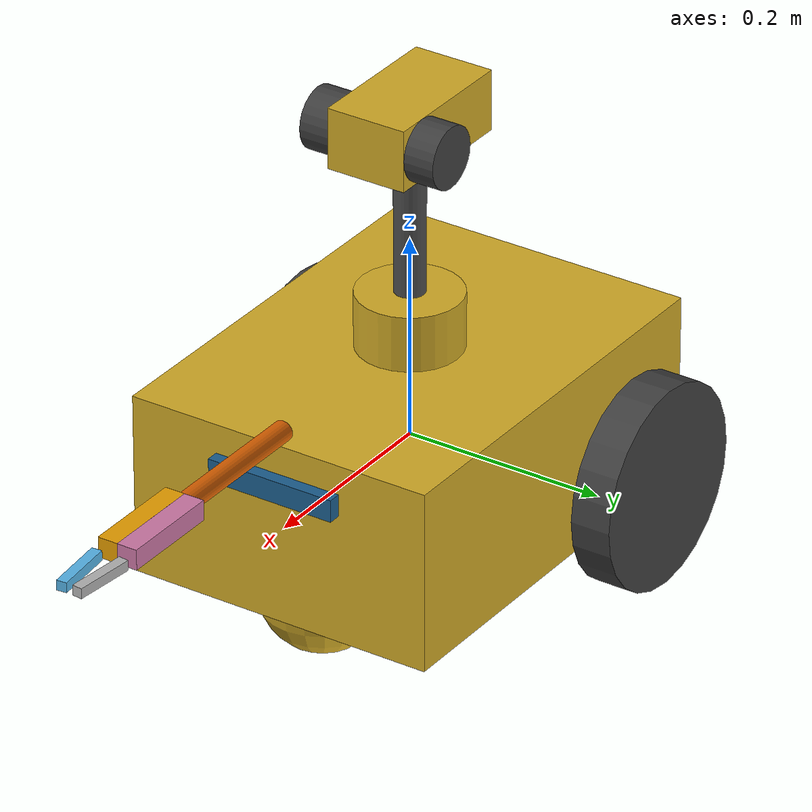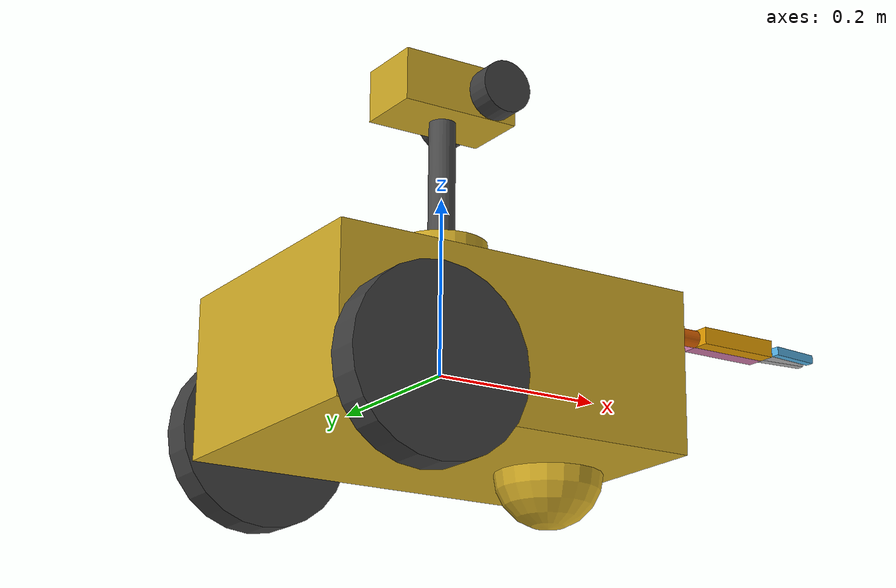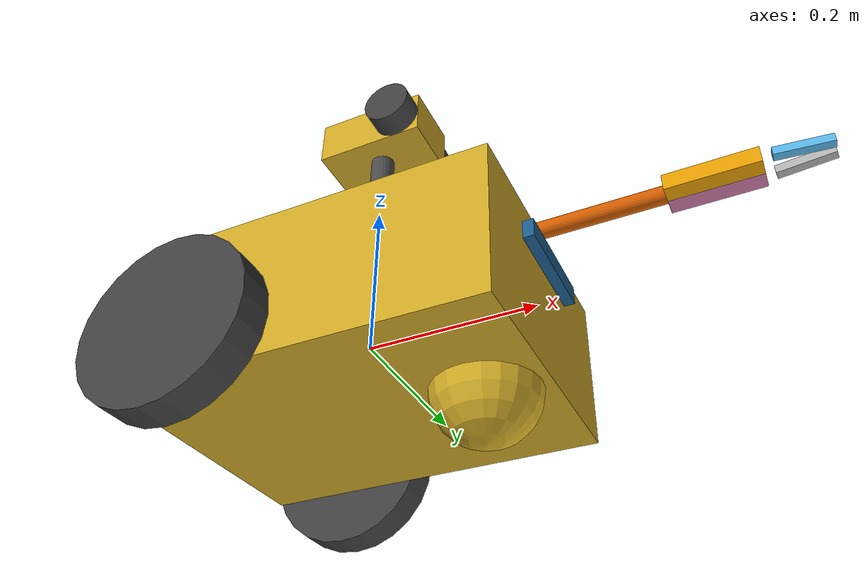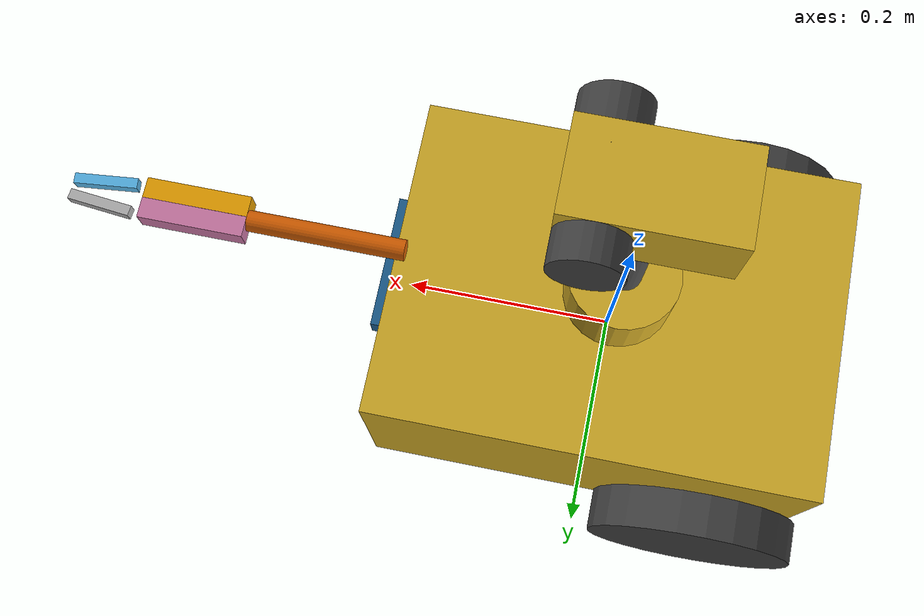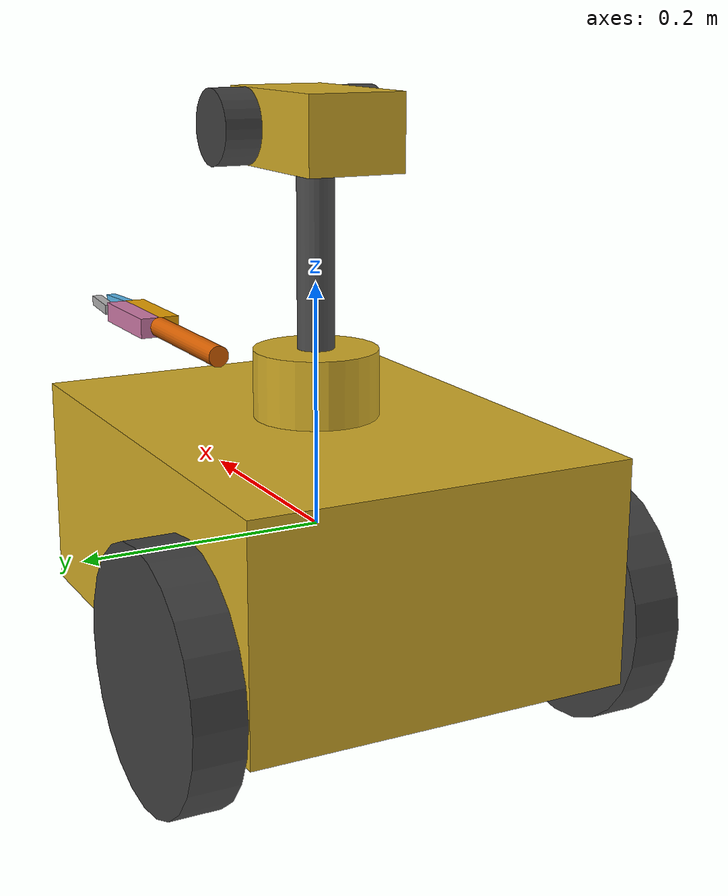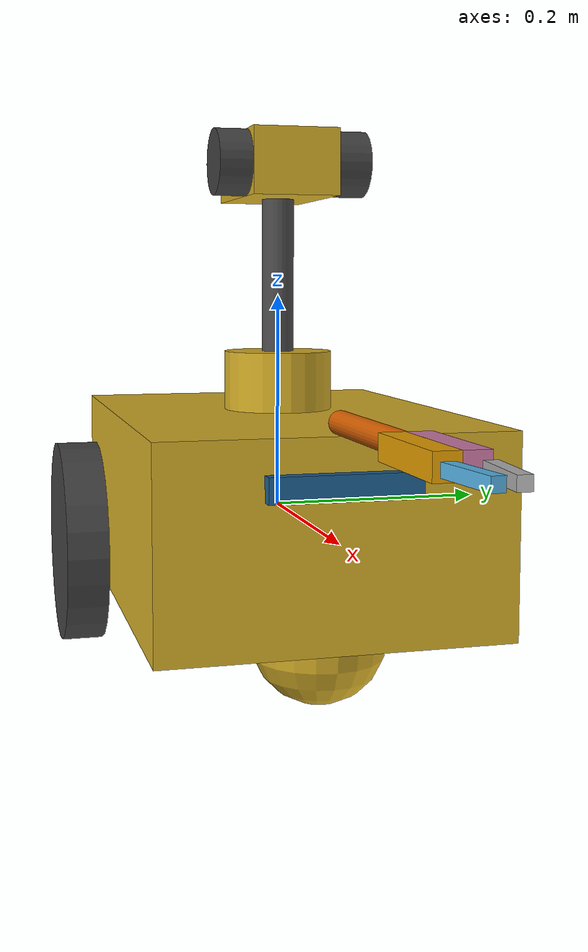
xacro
<?xml version="1.0"?>
<robot name="prm_robot"
  xmlns:xacro="http://ros.org/wiki/xacro">

  <!-- Definicao de Algumas Contantes -->

  <xacro:property name="base_width" value="0.31"/>
  <xacro:property name="base_length" value="0.42"/>
  <xacro:property name="base_height" value="0.18"/>

  <xacro:property name="wheel_radius" value="0.10"/> <!-- Raio da roda -->
  <xacro:property name="wheel_width" value="0.04"/> <!-- Largura da roda -->
  <xacro:property name="wheel_ygap" value="0.025"/> <!-- Distancia entre as rodas -->
  <xacro:property name="wheel_zoff" value="0.05"/> <!-- Deslocamento da roda em Z -->
  <xacro:property name="wheel_xoff" value="0.12"/> <!-- Deslocamento da roda em X -->

  <xacro:property name="caster_xoff" value="0.14"/> <!-- Deslocamento do caster em X -->

  <!-- Definição de algumas propriedades inerciais -->
  <xacro:macro name="box_inertia" params="m w h d">
    <inertial>
      <origin xyz="0 0 0" rpy="${pi/2} 0 ${pi/2}"/>
      <mass value="${m}"/>
      <inertia ixx="${(m/12) * (h*h + d*d)}" ixy="0.0" ixz="0.0" iyy="${(m/12) * (w*w + d*d)}" iyz="0.0" izz="${(m/12) * (w*w + h*h)}"/>
    </inertial>
  </xacro:macro>

  <xacro:macro name="cylinder_inertia" params="m r h">
    <inertial>
      <origin xyz="0 0 0" rpy="${pi/2} 0 0" />
      <mass value="${m}"/>
      <inertia ixx="${(m/12) * (3*r*r + h*h)}" ixy = "0" ixz = "0" iyy="${(m/12) * (3*r*r + h*h)}" iyz = "0" izz="${(m/2) * (r*r)}"/>
    </inertial>
  </xacro:macro>

  <xacro:macro name="sphere_inertia" params="m r">
    <inertial>
      <mass value="${m}"/>
      <inertia ixx="${(2/5) * m * (r*r)}" ixy="0.0" ixz="0.0" iyy="${(2/5) * m * (r*r)}" iyz="0.0" izz="${(2/5) * m * (r*r)}"/>
    </inertial>
  </xacro:macro>

  <!-- Definindo plugin para publiar a pose do robo -->
  <gazebo>
    <plugin filename="libignition-gazebo-pose-publisher-system" name="ignition::gazebo::systems::PosePublisher">
      <publish_link_pose>false</publish_link_pose>
      <publish_model_pose>true</publish_model_pose>
      <publish_nested_model_pose>true</publish_nested_model_pose>
      <use_pose_vector_msg>false</use_pose_vector_msg>
      <publish_visual_pose>false</publish_visual_pose>
      <update_frequency>10</update_frequency>
    </plugin>
  </gazebo>

  <!-- Definindo a Base do Robô -->
  <link name="base_link">
    <visual>
      <geometry>
        <box size="${base_length} ${base_width} ${base_height}"/>
      </geometry>
      <material name="DarkBlue">
        <color rgba="0.82 0.67 0.15 1.0"/>
      </material>
    </visual>

    <collision>
      <geometry>
        <box size="${base_length} ${base_width} ${base_height}"/>
      </geometry>
    </collision>

    <xacro:box_inertia m="1" w="${base_width}" d="${base_length}" h="${base_height}"/>
  </link>

  <!-- Definindo a Base do Robô (base footprint) -->
  <link name="base_footprint">
    <xacro:box_inertia m="0" w="0" d="0" h="0"/>
  </link>

  <joint name="base_joint" type="fixed">
    <parent link="base_link"/>
    <child link="base_footprint"/>
    <origin xyz="0.0 0.0 ${-(wheel_radius+wheel_zoff)}" rpy="0 0 0"/>
  </joint>

  <!-- Definindo as Rodas do Robô -->
  <!-- Parâmetros: prefix: drivewhl_l, drivewhl_r -->
  <xacro:macro name="wheel" params="prefix x_reflect y_reflect">
    <link name="${prefix}_link">
      <visual>
        <origin xyz="0 0 0" rpy="${pi/2} 0 0"/>
        <geometry>
          <cylinder radius="${wheel_radius}" length="${wheel_width}"/>
        </geometry>
        <material name="LightBlue">
          <color rgba="0.25 0.25 0.25 1.0"/>
        </material>
      </visual>

      <collision>
        <origin xyz="0 0 0" rpy="${pi/2} 0 0"/>
        <geometry>
          <cylinder radius="${wheel_radius}" length="${wheel_width}"/>
        </geometry>
      </collision>

      <xacro:cylinder_inertia m="2.5" r="${wheel_radius}" h="${wheel_width}"/>
    </link>

    <joint name="${prefix}_joint" type="continuous">
      <parent link="base_link"/>
      <child link="${prefix}_link"/>
      <origin xyz="${x_reflect*wheel_xoff} ${y_reflect*(base_width/2+wheel_ygap)} ${-wheel_zoff}" rpy="0 0 0"/>
      <axis xyz="0 1 0"/>
      <dynamics damping="0.2"/>
    </joint>
  </xacro:macro>

  <xacro:wheel prefix="drivewhl_l" x_reflect="-1" y_reflect="1" />
  <xacro:wheel prefix="drivewhl_r" x_reflect="-1" y_reflect="-1" />

  <link name="front_caster">
    <visual>
      <geometry>
        <sphere radius="${(wheel_radius+wheel_zoff-(base_height/2))}"/>
      </geometry>
      <material name="DarkBlue">
        <color rgba="0.82 0.67 0.15 1.0"/>
      </material>
    </visual>

    <collision>
      <origin xyz="0 0 0" rpy="0 0 0"/>
      <geometry>
        <sphere radius="${(wheel_radius+wheel_zoff-(base_height/2))}"/>
      </geometry>
    </collision>

    <xacro:sphere_inertia m="0.005" r="${(wheel_radius+wheel_zoff-(base_height/2))}"/>
  </link>

  <joint name="caster_joint" type="fixed">
    <parent link="base_link"/>
    <child link="front_caster"/>
    <origin xyz="${caster_xoff} 0.0 ${-(base_height/2)}" rpy="0 0 0"/>
  </joint>

  <!-- Definindo a IMU do Robô (física) -->
  <link name="imu_link">
    <visual>
      <geometry>
        <box size="0.1 0.1 0.1"/>
      </geometry>
    </visual>

    <collision>
      <geometry>
        <box size="0.1 0.1 0.1"/>
      </geometry>
    </collision>

    <xacro:box_inertia m="0.001" w="0.1" d="0.1" h="0.1"/>
  </link>

  <!-- Definindo o sensor IMU no Gazebo -->
  <gazebo reference="imu_link">
    <sensor name="imu_sensor" type="imu">
      <ignition_frame_id>imu_link</ignition_frame_id>
      <plugin filename="ignition-gazebo-imu-system" name="ignition::gazebo::systems::Imu">
      </plugin>

      <topic>imu</topic>
      <always_on>true</always_on>
      <update_rate>50</update_rate>
      <visualize>true</visualize>
      <imu>
        <angular_velocity>
          <x>
            <noise type="gaussian">
              <mean>0.0</mean>
              <stddev>2e-4</stddev>
              <bias_mean>0.0000075</bias_mean>
              <bias_stddev>0.0000008</bias_stddev>
            </noise>
          </x>
          <y>
            <noise type="gaussian">
              <mean>0.0</mean>
              <stddev>2e-4</stddev>
              <bias_mean>0.0000075</bias_mean>
              <bias_stddev>0.0000008</bias_stddev>
            </noise>
          </y>
          <z>
            <noise type="gaussian">
              <mean>0.0</mean>
              <stddev>2e-4</stddev>
              <bias_mean>0.0000075</bias_mean>
              <bias_stddev>0.0000008</bias_stddev>
            </noise>
          </z>
        </angular_velocity>
        <linear_acceleration>
          <x>
            <noise type="gaussian">
              <mean>0.0</mean>
              <stddev>1.7e-2</stddev>
              <bias_mean>0.1</bias_mean>
              <bias_stddev>0.001</bias_stddev>
            </noise>
          </x>
          <y>
            <noise type="gaussian">
              <mean>0.0</mean>
              <stddev>1.7e-2</stddev>
              <bias_mean>0.1</bias_mean>
              <bias_stddev>0.001</bias_stddev>
            </noise>
          </y>
          <z>
            <noise type="gaussian">
              <mean>0.0</mean>
              <stddev>1.7e-2</stddev>
              <bias_mean>0.1</bias_mean>
              <bias_stddev>0.001</bias_stddev>
            </noise>
          </z>
        </linear_acceleration>
      </imu>
    </sensor>
  </gazebo>

  <!-- Ligando a IMU a base do robô -->
  <joint name="imu_joint" type="fixed">
    <parent link="base_link"/>
    <child link="imu_link"/>
    <origin xyz="0 0 0.01"/>
  </joint>

  <!-- Define um sistema de controle ROS 2 utilizando a infraestrutura ros2_control -->
  <ros2_control name="IgnitionSystem" type="system">

    <!-- Seção de hardware do sistema, onde é especificado o plugin que fará a ponte entre o Gazebo (Ignition) e o ros2_control -->
    <hardware>
      <!-- Plugin que permite a integração entre o Ignition Gazebo e o framework ros2_control -->
      <plugin>ign_ros2_control/IgnitionSystem</plugin>
    </hardware>

    <!-- Definição do primeiro atuador, correspondente à roda esquerda ("drive wheel left") -->
    <joint name="drivewhl_l_joint">

      <!-- Interface de comando de velocidade angular (por exemplo, rad/s) para essa junta -->
      <command_interface name="velocity">
        <!-- Valor mínimo permitido para o comando de velocidade (limite inferior) -->
        <param name="min">-1</param>
        <!-- Valor máximo permitido para o comando de velocidade (limite superior) -->
        <param name="max">1</param>
      </command_interface>

      <!-- Interface de estado que fornece a posição atual da junta (por exemplo, em radianos) -->
      <state_interface name="position"/>
      <!-- Interface de estado que fornece a velocidade atual da junta (por exemplo, em rad/s) -->
      <state_interface name="velocity"/>
    </joint>

    <!-- Definição do segundo atuador, correspondente à roda direita ("drive wheel right") -->
    <joint name="drivewhl_r_joint">

      <!-- Interface de comando de velocidade angular para essa junta -->
      <command_interface name="velocity">
        <!-- Limite inferior da velocidade que pode ser comandada -->
        <param name="min">-1</param>
        <!-- Limite superior da velocidade que pode ser comandada -->
        <param name="max">1</param>
      </command_interface>

      <!-- Interface de estado para leitura da posição da junta -->
      <state_interface name="position"/>

      <!-- Interface de estado para leitura da velocidade da junta -->
      <state_interface name="velocity"/>
    </joint>

    <joint name="gripper_extension">
      <command_interface name="position">
        <param name="min">-1.57075</param>
        <param name="max">0.2</param>
      </command_interface>
      <state_interface name="position"/>
      <state_interface name="velocity"/>
    </joint>

    <joint name="left_gripper_joint">
      <command_interface name="position">
        <param name="min">0.0</param>
        <param name="max">0.06</param>
      </command_interface>

      <state_interface name="position"/>
      <state_interface name="velocity"/>
    </joint>

    <joint name="right_gripper_joint">
      <command_interface name="position">
        <param name="min">-0.06</param>
        <param name="max">0.0</param>
      </command_interface>

      <state_interface name="position"/>
      <state_interface name="velocity"/>
    </joint>

  </ros2_control>

  <gazebo>
    <plugin filename="ign_ros2_control-system" name="ign_ros2_control::IgnitionROS2ControlPlugin">
      <parameters>$(find pega_bandeiras)/config/controller_config.yaml</parameters>
    </plugin>
  </gazebo>

  <link name="lidar_link">
    <inertial>
      <origin xyz="0 0 0" rpy="0 0 0"/>
      <mass value="0.125"/>
      <inertia ixx="0.001" ixy="0" ixz="0" iyy="0.001" iyz="0" izz="0.001" />
    </inertial>

    <collision>
      <origin xyz="0 0 0" rpy="0 0 0"/>
      <geometry>
        <cylinder radius="0.0508" length="0.055"/>
      </geometry>
    </collision>

    <visual>
      <origin xyz="0 0 0" rpy="0 0 0"/>
      <geometry>
        <cylinder radius="0.0508" length="0.055"/>
      </geometry>
      <material name="LightBlue">
        <color rgba="0.82 0.67 0.15 1.0"/>
      </material>
    </visual>
  </link>

  <joint name="lidar_joint" type="fixed">
    <parent link="base_link"/>
    <child link="lidar_link"/>
    <origin xyz="0 0 0.12" rpy="0 0 0"/>
  </joint>

  <gazebo reference="lidar_link">
    <sensor name="lidar" type="gpu_lidar">
      <ignition_frame_id>lidar_link</ignition_frame_id>
      <topic>scan</topic>
      <always_on>true</always_on>
      <visualize>true</visualize>
      <update_rate>5</update_rate>
      <ray>
        <scan>
          <horizontal>
            <samples>360</samples>
            <resolution>1.000000</resolution>
            <min_angle>0.000000</min_angle>
            <max_angle>6.280000</max_angle>
          </horizontal>
        </scan>
        <range>
          <min>0.120000</min>
          <max>3.5</max>
          <resolution>0.015000</resolution>
        </range>
        <noise>
          <type>gaussian</type>
          <mean>0.0</mean>
          <stddev>0.01</stddev>
        </noise>
      </ray>
    </sensor>
  </gazebo>

  <link name="camera_link">
    <visual>
      <origin xyz="0 0 0" rpy="0 0 0"/>
      <geometry>
        <box size="0.015 0.130 0.022"/>
      </geometry>
      <material name="LightBlue">
        <color rgba="0.11 0.37 0.56 1.0"/>
      </material>
    </visual>

    <collision>
      <origin xyz="0 0 0" rpy="0 0 0"/>
      <geometry>
        <box size="0.015 0.130 0.022"/>
      </geometry>
    </collision>

    <inertial>
      <origin xyz="0 0 0" rpy="0 0 0"/>
      <mass value="0.035"/>
      <inertia ixx="0.001" ixy="0" ixz="0" iyy="0.001" iyz="0" izz="0.001" />
    </inertial>
  </link>

  <joint name="camera_joint" type="fixed">
    <parent link="base_link"/>
    <child link="camera_link"/>
    <origin xyz="0.215 0 0.05" rpy="0 0 0"/>
  </joint>

  <!--PESCOÇO ESTILO WALL-E-->

  <link name="neck_link">

    <visual>
      <geometry>
        <cylinder radius="0.015" length="0.18"/>
      </geometry>

      <material name="DarkGray">
        <color rgba="0.3 0.3 0.3 1.0"/>
      </material>
    </visual>

    <collision>
      <geometry>
        <cylinder radius="0.015" length="0.18"/>
      </geometry>
    </collision>

    <xacro:cylinder_inertia m="0.10" r="0.015" h="0.18"/>

  </link>

  <joint name="neck_joint" type="fixed">
    <parent link="base_link"/>
    <child link="neck_link"/>

    <!-- topo do corpo -->
    <origin xyz="0.0 0.0 0.20" rpy="0 0 0"/>
  </joint>

  <!--CABEÇA WALL-E-->

  <link name="head_link">

    <visual>
      <geometry>
        <box size="0.14 0.08 0.06"/>
      </geometry>

      <material name="WallEYellow">
        <color rgba="0.82 0.67 0.15 1.0"/>
      </material>
    </visual>

    <collision>
      <geometry>
        <box size="0.14 0.08 0.06"/>
      </geometry>
    </collision>

    <xacro:box_inertia
      m="0.20"
      w="0.08"
      h="0.06"
      d="0.14"/>

  </link>

  <joint name="head_joint" type="fixed">
    <parent link="neck_link"/>
    <child link="head_link"/>

    <!-- topo do pescoço -->
    <origin xyz="0 0 0.12" rpy="0 0 0"/>
  </joint>

  <!--OLHO ESQUERDO-->

  <link name="left_eye">

    <visual>
      <origin xyz="0 0 0" rpy="1.5708 0 0"/>

      <geometry>
        <cylinder radius="0.03" length="0.05"/>
      </geometry>

      <material name="DarkGray">
        <color rgba="0.25 0.25 0.25 1.0"/>
      </material>
    </visual>

    <collision>
      <origin xyz="0 0 0" rpy="1.5708 0 0"/>

      <geometry>
        <cylinder radius="0.03" length="0.05"/>
      </geometry>
    </collision>

    <xacro:cylinder_inertia m="0.05" r="0.03" h="0.05"/>

  </link>

  <joint name="left_eye_joint" type="fixed">
    <parent link="head_link"/>
    <child link="left_eye"/>

    <origin xyz="0.04 0.045 0" rpy="0 0 0"/>
  </joint>

  <!--OLHO DIREITO-->

  <link name="right_eye">

    <visual>
      <origin xyz="0 0 0" rpy="1.5708 0 0"/>

      <geometry>
        <cylinder radius="0.03" length="0.05"/>
      </geometry>

      <material name="DarkGray">
        <color rgba="0.25 0.25 0.25 1.0"/>
      </material>
    </visual>

    <collision>
      <origin xyz="0 0 0" rpy="1.5708 0 0"/>

      <geometry>
        <cylinder radius="0.03" length="0.05"/>
      </geometry>
    </collision>

    <xacro:cylinder_inertia m="0.05" r="0.03" h="0.05"/>

  </link>

  <joint name="right_eye_joint" type="fixed">
    <parent link="head_link"/>
    <child link="right_eye"/>

    <origin xyz="0.04 -0.045 0" rpy="0 0 0"/>
  </joint>

  <link name="camera_frame"/>

  <joint name="camera_frame_joint" type="fixed">
    <origin xyz="0 0 0" rpy="${-pi/2} 0 ${-pi/2}"/>
    <parent link="camera_link"/>
    <child link="camera_frame"/>
  </joint>

  <gazebo reference="camera_link">

    <!-- Insere uma camera comum RGB -->

    <!-- Insere uma camera com segmentacao semantica -->
    <sensor name="robot_cam" type="segmentation">
      <topic>robot_cam</topic>
      <camera>
        <segmentation_type>semantic</segmentation_type>
        <horizontal_fov>1.57</horizontal_fov>
        <image>
          <width>320</width>
          <height>240</height>
        </image>
        <clip>
          <near>0.1</near>
          <far>100</far>
        </clip>
      </camera>
      <always_on>1</always_on>
      <update_rate>15</update_rate>
      <visualize>true</visualize>
    </sensor>

    <!-- Insere uma camera bounding box 2D completo -->

    <!-- Insere uma camera bounding box 2D -->

    <!-- Insere uma camera bounding box 3D -->

  </gazebo>

  <joint name="gripper_extension" type="revolute">

    <axis xyz="0 1 0"/>
    <limit effort="50.0" lower="-1.57075" upper="0.2" velocity="0.5"/>
    <origin rpy="0 0 0" xyz="0.2 0 0.1"/>

    <parent link="base_link"/>
    <child link="gripper_pole"/>
  </joint>

  <link name="gripper_pole">
    <visual>
      <geometry>
        <cylinder length="0.2" radius="0.01"/>
      </geometry>
      <origin rpy="0 1.57075 0" xyz="0.1 0 0"/>
    </visual>

    <collision>
      <geometry>
        <cylinder length="0.2" radius="0.01"/>
      </geometry>
    </collision>

    <xacro:cylinder_inertia m="0.01" r="0.01" h="0.2"/>

  </link>

  <joint name="left_gripper_joint" type="prismatic">
    <axis xyz="0 1 0"/>
    <limit effort="100.0" lower="0.0" upper="0.06" velocity="0.25"/>

    <origin rpy="0 0 0" xyz="0.2 0.01 0"/>
    <parent link="gripper_pole"/>
    <child link="left_gripper"/>
  </joint>

  <link name="left_gripper">
    <visual>
      <geometry>
        <box size="0.1 0.02 0.02"/> <!-- Comprimento, largura, altura -->
      </geometry>
    </visual>

    <collision>
      <geometry>
        <box size="0.1 0.02 0.02"/>
      </geometry>
    </collision>

    <xacro:box_inertia m="0.015" w="0.02" h="0.02" d="0.1"/>

  </link>

  <joint name="left_tip_joint" type="fixed">
    <origin rpy="0.0 0 0" xyz="0.06 0.001 0"/>
    <parent link="left_gripper"/>
    <child link="left_tip"/>
  </joint>

  <link name="left_tip">

    <visual>
      <origin rpy="0 0 -0.1" xyz="0.03 0 0"/>
      <geometry>
        <box size="0.06 0.01 0.01"/>
      </geometry>
    </visual>

    <collision>
      <origin rpy="0 0 -0.1" xyz="0.03 0 0"/>
      <geometry>
        <box size="0.06 0.01 0.01"/>
      </geometry>
    </collision>

    <xacro:box_inertia m="0.005" w="0.01" h="0.01" d="0.06"/>

  </link>

  <joint name="right_gripper_joint" type="prismatic">
    <axis xyz="0 1 0"/>
    <limit effort="100.0" lower="-0.06" upper="0" velocity="0.25"/>
    <origin rpy="0 0 0" xyz="0.2 -0.01 0"/>

    <parent link="gripper_pole"/>
    <child link="right_gripper"/>
  </joint>

  <link name="right_gripper">
    <visual>
      <origin rpy="-3.1415 0 0" xyz="0 0 0"/>
      <geometry>
        <box size="0.1 0.02 0.02"/>
      </geometry>
    </visual>

    <collision>
      <origin rpy="-3.1415 0 0" xyz="0 0 0"/>
      <geometry>
        <box size="0.1 0.02 0.02"/>
      </geometry>
    </collision>

    <xacro:box_inertia m="0.015" w="0.02" h="0.02" d="0.1"/>

  </link>

  <joint name="right_tip_joint" type="fixed">
    <origin rpy="-3.1415 0 0" xyz="0.06 -0.001 0"/>
    <parent link="right_gripper"/>
    <child link="right_tip"/>
  </joint>

  <link name="right_tip">
    <visual>
      <origin rpy="0 0 -0.1" xyz="0.03 0 0"/>
      <geometry>
        <box size="0.06 0.01 0.01"/>
      </geometry>
    </visual>

    <collision>
      <origin rpy="0 0 -0.1" xyz="0.03 0 0"/>
      <geometry>
        <box size="0.06 0.01 0.01"/>
      </geometry>
    </collision>

    <xacro:box_inertia m="0.005" w="0.01" h="0.01" d="0.06"/>

  </link>

</robot>
